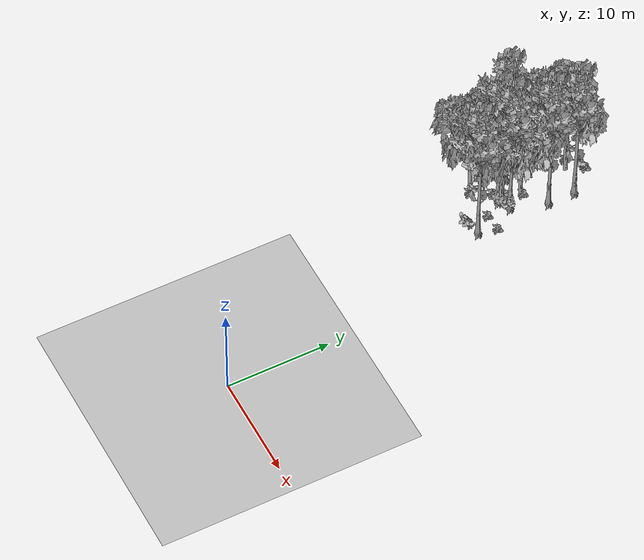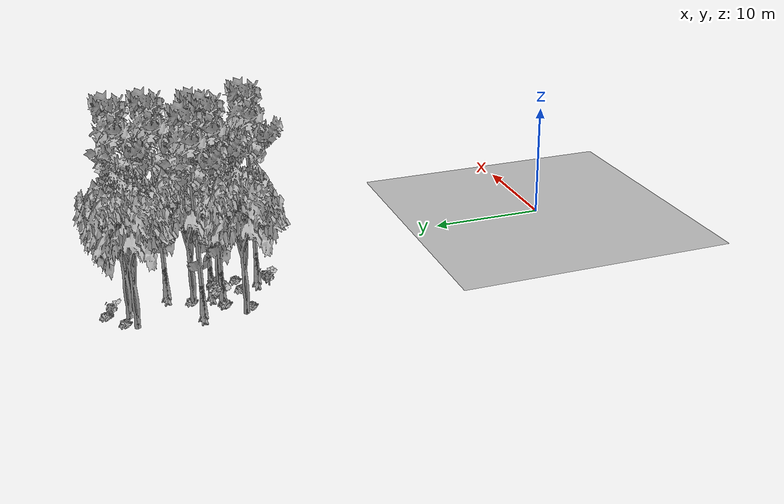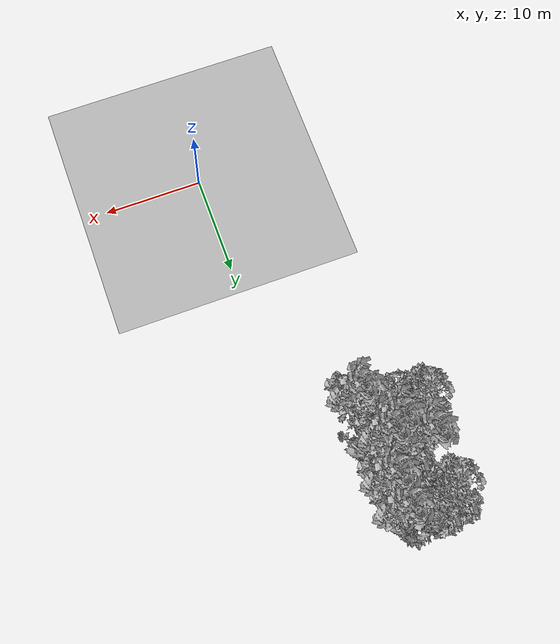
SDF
<sdf version="1.7">
 <world name="default">
  <model name="ground_plane">
   <static>1</static>
   <link name="link">
    <collision name="collision">
     <pose>-50 0 0 0 -0 0</pose>
     <geometry><plane><normal>0 0 1</normal><size>80 80</size></plane></geometry>
     <surface><contact><ode><min_depth>0.01</min_depth><max_vel>0</max_vel></ode></contact></surface>
    </collision>
    <visual name="grass">
     <cast_shadows>0</cast_shadows>
     <geometry>
      <mesh>
       <scale>0.46714285714285714 0.46714285714285714 0.1</scale>
       <uri>file://grass_plane/meshes/grass_plane.dae</uri>
      </mesh>
     </geometry>
    </visual>
   </link>
  </model>
  <model name="Tree 20">
   <static>1</static>
   <pose>-10.212879514915599 29.72032840404134 0 1.57079 -0 0</pose>
   <link name="link">
    <collision name="collision">
     <geometry><mesh><scale>3.5 5 3.5</scale><uri>model://tree_2/meshes/tree_2.obj</uri></mesh></geometry>
    </collision>
    <visual name="visual">
     <geometry><mesh><scale>3.5 5 3.5</scale><uri>model://tree_2/meshes/tree_2.obj</uri></mesh></geometry>
    </visual>
   </link>
  </model>
  <model name="Tree 46">
   <static>1</static>
   <pose>-6.92544637372642 31.137719801433093 0 1.57079 -0 0</pose>
   <link name="link">
    <collision name="collision">
     <geometry><mesh><scale>3.5 5 3.5</scale><uri>model://tree_2/meshes/tree_2.obj</uri></mesh></geometry>
    </collision>
    <visual name="visual">
     <geometry><mesh><scale>3.5 5 3.5</scale><uri>model://tree_2/meshes/tree_2.obj</uri></mesh></geometry>
    </visual>
   </link>
  </model>
  <model name="Tree 103">
   <static>1</static>
   <pose>-7.176937768926923 33.26438271540454 0 1.57079 -0 0</pose>
   <link name="link">
    <collision name="collision">
     <geometry><mesh><scale>3.5 5 3.5</scale><uri>model://tree_2/meshes/tree_2.obj</uri></mesh></geometry>
    </collision>
    <visual name="visual">
     <geometry><mesh><scale>3.5 5 3.5</scale><uri>model://tree_2/meshes/tree_2.obj</uri></mesh></geometry>
    </visual>
   </link>
  </model>
  <model name="Tree 198">
   <static>1</static>
   <pose>-9.333394614096985 32.904045918812045 0 1.57079 -0 0</pose>
   <link name="link">
    <collision name="collision">
     <geometry><mesh><scale>3.5 5 3.5</scale><uri>model://tree_9/meshes/tree_9.obj</uri></mesh></geometry>
    </collision>
    <visual name="visual">
     <geometry><mesh><scale>3.5 5 3.5</scale><uri>model://tree_9/meshes/tree_9.obj</uri></mesh></geometry>
    </visual>
   </link>
  </model>
  <model name="Tree 362">
   <static>1</static>
   <pose>-7.323368498146614 31.040092996373986 0 1.57079 -0 0</pose>
   <link name="link">
    <collision name="collision">
     <geometry><mesh><scale>3.5 5 3.5</scale><uri>model://tree_9/meshes/tree_9.obj</uri></mesh></geometry>
    </collision>
    <visual name="visual">
     <geometry><mesh><scale>3.5 5 3.5</scale><uri>model://tree_9/meshes/tree_9.obj</uri></mesh></geometry>
    </visual>
   </link>
  </model>
  <model name="Tree 383">
   <static>1</static>
   <pose>-9.582266404593224 37.88522286087051 0 1.57079 -0 0</pose>
   <link name="link">
    <collision name="collision">
     <geometry><mesh><scale>3.5 5 3.5</scale><uri>model://tree_2/meshes/tree_2.obj</uri></mesh></geometry>
    </collision>
    <visual name="visual">
     <geometry><mesh><scale>3.5 5 3.5</scale><uri>model://tree_2/meshes/tree_2.obj</uri></mesh></geometry>
    </visual>
   </link>
  </model>
  <model name="Tree 412">
   <static>1</static>
   <pose>-5.0361327969266725 27.75817518986402 0 1.57079 -0 0</pose>
   <link name="link">
    <collision name="collision">
     <geometry><mesh><scale>3.5 5 3.5</scale><uri>model://tree_9/meshes/tree_9.obj</uri></mesh></geometry>
    </collision>
    <visual name="visual">
     <geometry><mesh><scale>3.5 5 3.5</scale><uri>model://tree_9/meshes/tree_9.obj</uri></mesh></geometry>
    </visual>
   </link>
  </model>
  <model name="Tree 470">
   <static>1</static>
   <pose>-7.83526756232952 38.27137444856507 0 1.57079 -0 0</pose>
   <link name="link">
    <collision name="collision">
     <geometry><mesh><scale>3.5 5 3.5</scale><uri>model://tree_2/meshes/tree_2.obj</uri></mesh></geometry>
    </collision>
    <visual name="visual">
     <geometry><mesh><scale>3.5 5 3.5</scale><uri>model://tree_2/meshes/tree_2.obj</uri></mesh></geometry>
    </visual>
   </link>
  </model>
  <model name="Tree 494">
   <static>1</static>
   <pose>-6.225787050323277 31.688331302957977 0 1.57079 -0 0</pose>
   <link name="link">
    <collision name="collision">
     <geometry><mesh><scale>3.5 5 3.5</scale><uri>model://tree_9/meshes/tree_9.obj</uri></mesh></geometry>
    </collision>
    <visual name="visual">
     <geometry><mesh><scale>3.5 5 3.5</scale><uri>model://tree_9/meshes/tree_9.obj</uri></mesh></geometry>
    </visual>
   </link>
  </model>
  <model name="Tree 525">
   <static>1</static>
   <pose>-5.112995922917861 35.06167537447426 0 1.57079 -0 0</pose>
   <link name="link">
    <collision name="collision">
     <geometry><mesh><scale>3.5 5 3.5</scale><uri>model://tree_9/meshes/tree_9.obj</uri></mesh></geometry>
    </collision>
    <visual name="visual">
     <geometry><mesh><scale>3.5 5 3.5</scale><uri>model://tree_9/meshes/tree_9.obj</uri></mesh></geometry>
    </visual>
   </link>
  </model>
  <model name="Tree 593">
   <static>1</static>
   <pose>-5.115103409367038 37.727850489017754 0 1.57079 -0 0</pose>
   <link name="link">
    <collision name="collision">
     <geometry><mesh><scale>3.5 5 3.5</scale><uri>model://tree_9/meshes/tree_9.obj</uri></mesh></geometry>
    </collision>
    <visual name="visual">
     <geometry><mesh><scale>3.5 5 3.5</scale><uri>model://tree_9/meshes/tree_9.obj</uri></mesh></geometry>
    </visual>
   </link>
  </model>
  <model name="Bush 35">
   <static>1</static>
   <pose>-6.978021536138435 31.131891326608326 0 1.57079 -0 0</pose>
   <link name="link">
    <collision name="collision">
     <geometry><mesh><scale>2 2 2</scale><uri>model://bush_1/meshes/bush_1.obj</uri></mesh></geometry>
     <surface><contact><collide_without_contact>false</collide_without_contact></contact></surface>
    </collision>
    <visual name="visual">
     <geometry><mesh><scale>2 2 2</scale><uri>model://bush_1/meshes/bush_1.obj</uri></mesh></geometry>
    </visual>
   </link>
  </model>
  <model name="Bush 45">
   <static>1</static>
   <pose>-8.267581167939912 30.957832635724557 0 1.57079 -0 0</pose>
   <link name="link">
    <collision name="collision">
     <geometry><mesh><scale>2 2 2</scale><uri>model://bush_2/meshes/bush_2.obj</uri></mesh></geometry>
     <surface><contact><collide_without_contact>false</collide_without_contact></contact></surface>
    </collision>
    <visual name="visual">
     <geometry><mesh><scale>2 2 2</scale><uri>model://bush_2/meshes/bush_2.obj</uri></mesh></geometry>
    </visual>
   </link>
  </model>
  <model name="Bush 48">
   <static>1</static>
   <pose>-7.035787228435094 39.46555748543307 0 1.57079 -0 0</pose>
   <link name="link">
    <collision name="collision">
     <geometry><mesh><scale>2 2 2</scale><uri>model://bush_0/meshes/bush_0.obj</uri></mesh></geometry>
     <surface><contact><collide_without_contact>false</collide_without_contact></contact></surface>
    </collision>
    <visual name="visual">
     <geometry><mesh><scale>2 2 2</scale><uri>model://bush_0/meshes/bush_0.obj</uri></mesh></geometry>
    </visual>
   </link>
  </model>
  <model name="Bush 90">
   <static>1</static>
   <pose>-9.309432169218574 29.155832124960867 0 1.57079 -0 0</pose>
   <link name="link">
    <collision name="collision">
     <geometry><mesh><scale>2 2 2</scale><uri>model://bush_2/meshes/bush_2.obj</uri></mesh></geometry>
     <surface><contact><collide_without_contact>false</collide_without_contact></contact></surface>
    </collision>
    <visual name="visual">
     <geometry><mesh><scale>2 2 2</scale><uri>model://bush_2/meshes/bush_2.obj</uri></mesh></geometry>
    </visual>
   </link>
  </model>
  <model name="Bush 165">
   <static>1</static>
   <pose>-5.6415415706274175 27.164785482801378 0 1.57079 -0 0</pose>
   <link name="link">
    <collision name="collision">
     <geometry><mesh><scale>2 2 2</scale><uri>model://bush_0/meshes/bush_0.obj</uri></mesh></geometry>
     <surface><contact><collide_without_contact>false</collide_without_contact></contact></surface>
    </collision>
    <visual name="visual">
     <geometry><mesh><scale>2 2 2</scale><uri>model://bush_0/meshes/bush_0.obj</uri></mesh></geometry>
    </visual>
   </link>
  </model>
  <model name="Bush 173">
   <static>1</static>
   <pose>-6.2008440582029465 29.349418687959513 0 1.57079 -0 0</pose>
   <link name="link">
    <collision name="collision">
     <geometry><mesh><scale>2 2 2</scale><uri>model://bush_2/meshes/bush_2.obj</uri></mesh></geometry>
     <surface><contact><collide_without_contact>false</collide_without_contact></contact></surface>
    </collision>
    <visual name="visual">
     <geometry><mesh><scale>2 2 2</scale><uri>model://bush_2/meshes/bush_2.obj</uri></mesh></geometry>
    </visual>
   </link>
  </model>
  <model name="Bush 202">
   <static>1</static>
   <pose>-6.961732015106197 33.39582648197522 0 1.57079 -0 0</pose>
   <link name="link">
    <collision name="collision">
     <geometry><mesh><scale>2 2 2</scale><uri>model://bush_2/meshes/bush_2.obj</uri></mesh></geometry>
     <surface><contact><collide_without_contact>false</collide_without_contact></contact></surface>
    </collision>
    <visual name="visual">
     <geometry><mesh><scale>2 2 2</scale><uri>model://bush_2/meshes/bush_2.obj</uri></mesh></geometry>
    </visual>
   </link>
  </model>
  <model name="Bush 255">
   <static>1</static>
   <pose>-6.410317264790216 31.22777827570802 0 1.57079 -0 0</pose>
   <link name="link">
    <collision name="collision">
     <geometry><mesh><scale>2 2 2</scale><uri>model://bush_1/meshes/bush_1.obj</uri></mesh></geometry>
     <surface><contact><collide_without_contact>false</collide_without_contact></contact></surface>
    </collision>
    <visual name="visual">
     <geometry><mesh><scale>2 2 2</scale><uri>model://bush_1/meshes/bush_1.obj</uri></mesh></geometry>
    </visual>
   </link>
  </model>
  <model name="Bush 288">
   <static>1</static>
   <pose>-4.466491555116015 29.427141363498023 0 1.57079 -0 0</pose>
   <link name="link">
    <collision name="collision">
     <geometry><mesh><scale>2 2 2</scale><uri>model://bush_2/meshes/bush_2.obj</uri></mesh></geometry>
     <surface><contact><collide_without_contact>false</collide_without_contact></contact></surface>
    </collision>
    <visual name="visual">
     <geometry><mesh><scale>2 2 2</scale><uri>model://bush_2/meshes/bush_2.obj</uri></mesh></geometry>
    </visual>
   </link>
  </model>
  <model name="Bush 419">
   <static>1</static>
   <pose>-8.74397654884924 38.69753116001793 0 1.57079 -0 0</pose>
   <link name="link">
    <collision name="collision">
     <geometry><mesh><scale>2 2 2</scale><uri>model://bush_2/meshes/bush_2.obj</uri></mesh></geometry>
     <surface><contact><collide_without_contact>false</collide_without_contact></contact></surface>
    </collision>
    <visual name="visual">
     <geometry><mesh><scale>2 2 2</scale><uri>model://bush_2/meshes/bush_2.obj</uri></mesh></geometry>
    </visual>
   </link>
  </model>
  <model name="Bush 499">
   <static>1</static>
   <pose>-7.069589082616183 39.936111856430585 0 1.57079 -0 0</pose>
   <link name="link">
    <collision name="collision">
     <geometry><mesh><scale>2 2 2</scale><uri>model://bush_2/meshes/bush_2.obj</uri></mesh></geometry>
     <surface><contact><collide_without_contact>false</collide_without_contact></contact></surface>
    </collision>
    <visual name="visual">
     <geometry><mesh><scale>2 2 2</scale><uri>model://bush_2/meshes/bush_2.obj</uri></mesh></geometry>
    </visual>
   </link>
  </model>
  <model name="Bush 564">
   <static>1</static>
   <pose>-6.095561598130864 27.028234342647266 0 1.57079 -0 0</pose>
   <link name="link">
    <collision name="collision">
     <geometry><mesh><scale>2 2 2</scale><uri>model://bush_0/meshes/bush_0.obj</uri></mesh></geometry>
     <surface><contact><collide_without_contact>false</collide_without_contact></contact></surface>
    </collision>
    <visual name="visual">
     <geometry><mesh><scale>2 2 2</scale><uri>model://bush_0/meshes/bush_0.obj</uri></mesh></geometry>
    </visual>
   </link>
  </model>
 </world>
</sdf>
